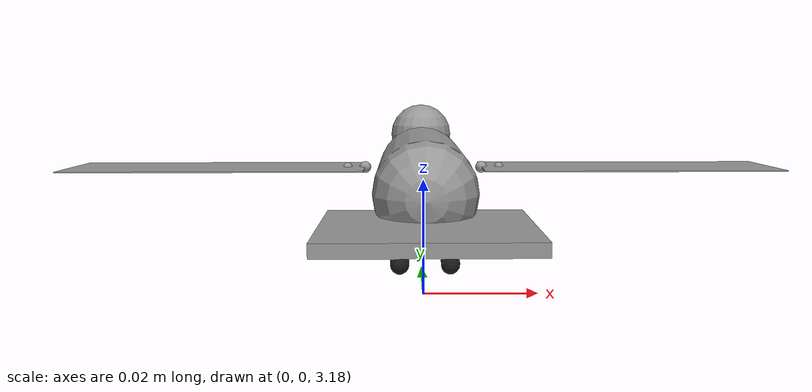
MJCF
<mujoco model="humming_bird">
	<compiler angle="degree" coordinate="local" inertiafromgeom="true" />
	<option gravity="0 0 -9.81" timestep="0.00002" integrator="RK4" />

	<!-- Visuals and defaults -->
	<asset>
		<texture name="tex" type="skybox" builtin="gradient" rgb1="0.8 0.9 1" rgb2="0.2 0.3 0.5" width="256" height="256" />
		<material name="mat_torso" rgba="0.2 0.2 0.2 1" specular="0.3" shininess="0.2" />
		<material name="mat_head"  rgba="0.1 0.5 0.1 1" specular="0.3" shininess="0.3" />
		<material name="mat_beak"  rgba="0.1 0.1 0.1 1" specular="0.1" />
		<material name="mat_wing"  rgba="0.25 0.25 0.25 0.95" specular="0.1" />
		<material name="mat_tail"  rgba="0.15 0.15 0.15 1" />
	</asset>

	<default>
		<!-- Choose density so that the total mass (~1.34e-5 m^3 total volume) is about 4.5 g -->
		<geom density="335" friction="0.4 0.02 0.01" margin="0.002" condim="3" contype="1" conaffinity="1" rgba="0.6 0.6 0.6 1" />
		<joint limited="true" damping="0.002" armature="0.00001" />
		<motor ctrllimited="true" ctrlrange="-1 1" />
	</default>

	<worldbody>
		<light pos="0 0 1.2" dir="0 0 -1" diffuse="0.8 0.8 0.8" specular="0.2 0.2 0.2" />
		<geom name="ground" type="plane" material="" size="2 2 0.05" rgba="0.9 0.9 0.9 1" contype="1" conaffinity="1" />

		<!-- Free-flying bird root -->
		<body name="bird" pos="0 0 3.2">
			<freejoint name="root" />

			<!-- Torso as a capsule oriented along +y (forward) -->
			<body name="torso" pos="0 0 0">
				<geom name="torso_capsule" type="capsule" fromto="0 -0.0175 0  0 0.0175 0" size="0.008" material="mat_torso" />

				<!-- Head (small sphere) slightly up and forward -->
				<geom name="head" type="sphere" pos="0 0.028 0.006" size="0.006" material="mat_head" />

				<!-- Beak as a small forward capsule -->
				<geom name="beak" type="capsule" fromto="0 0.034 0.006  0 0.049 0.006" size="0.002" material="mat_beak" />

			<!-- Tail as a thin box slightly back and down (longer for realism) -->
			<geom name="tail" type="box" pos="0 -0.026 -0.004" size="0.015 0.0125 0.001" material="mat_tail" />

				<!-- RIGHT WING: shoulder (flap) then wing (pitch) with a thin box geom -->
						<body name="right_shoulder" pos="0.010 0.002 0.002">
							<!-- Small mass element so the moving body has non-zero mass/inertia -->
							<geom name="right_shoulder_stub" type="sphere" pos="0 0 0" size="0.001" material="mat_torso" />
					<!-- Flapping about +y (forward) axis: up-down stroke -->
					<joint name="right_flap" type="hinge" axis="0 1 0" range="-75 75" damping="0.002" />
					<body name="right_wing" pos="0 0 0">
									<!-- Small mass element near wing root -->
									<geom name="right_wing_root" type="sphere" pos="0.003 0 0" size="0.0008" material="mat_torso" />
						<!-- Pitching about +x (spanwise) axis: angle of attack control -->
						<joint name="right_pitch" type="hinge" axis="1 0 0" range="-45 45" damping="0.0008" />
						<!-- Wing as a thin rectangular plate; half-sizes: [0.025 L, 0.0075 W, 0.0001 T] (0.2 mm thick) -->
						<geom name="right_wing_geom" type="box" pos="0.025 0 0" size="0.025 0.0075 0.0001" material="mat_wing" contype="1" conaffinity="1" />
					</body>
				</body>

				<!-- LEFT WING: mirrored -->
						<body name="left_shoulder" pos="-0.010 0.002 0.002">
							<!-- Small mass element so the moving body has non-zero mass/inertia -->
							<geom name="left_shoulder_stub" type="sphere" pos="0 0 0" size="0.001" material="mat_torso" />
					<joint name="left_flap" type="hinge" axis="0 1 0" range="-75 75" damping="0.002" />
					<body name="left_wing" pos="0 0 0">
									<!-- Small mass element near wing root -->
									<geom name="left_wing_root" type="sphere" pos="-0.003 0 0" size="0.0008" material="mat_torso" />
						<!-- Negative axis so that positive control has same effect as right -->
						<joint name="left_pitch" type="hinge" axis="-1 0 0" range="-45 45" damping="0.0008" />
									<geom name="left_wing_geom" type="box" pos="-0.025 0 0" size="0.025 0.0075 0.0001" material="mat_wing" contype="1" conaffinity="1" />
								</body>
							</body>

							<!-- IMU site for sensors -->
							<site name="imu" pos="0 0 0" size="0.002" rgba="0.8 0.2 0.2 1" />

				<!-- Optional: tiny legs just for visual reference (no joints) -->
			<!-- Shorter feet/legs to match hummingbird proportions -->
			<geom name="leg_right" type="capsule" fromto="0.004 -0.005 -0.002  0.004 -0.012 -0.012" size="0.0015" rgba="0.1 0.1 0.1 1" />
			<geom name="leg_left"  type="capsule" fromto="-0.004 -0.005 -0.002  -0.004 -0.012 -0.012" size="0.0015" rgba="0.1 0.1 0.1 1" />
			</body>
		</body>
	</worldbody>

	<!-- Actuators: Motors at the places real muscles actuate -->
	<actuator>
		<!-- Shoulder depressor/elevator: flapping power -->
		<motor name="motor_right_flap" joint="right_flap" gear="0.01" />
		<motor name="motor_left_flap"  joint="left_flap"  gear="0.01" />

		<!-- Wing pronation/supination: angle-of-attack control -->
		<motor name="motor_right_pitch" joint="right_pitch" gear="0.004" />
		<motor name="motor_left_pitch"  joint="left_pitch"  gear="0.004" />
	</actuator>

	<!-- A few sensors can be helpful for control later -->
		<sensor>
		<jointpos name="s_right_flap" joint="right_flap" />
		<jointpos name="s_left_flap"  joint="left_flap" />
		<jointpos name="s_right_pitch" joint="right_pitch" />
		<jointpos name="s_left_pitch"  joint="left_pitch" />
			<accelerometer name="imu_acc" site="imu" />
	</sensor>

</mujoco>
